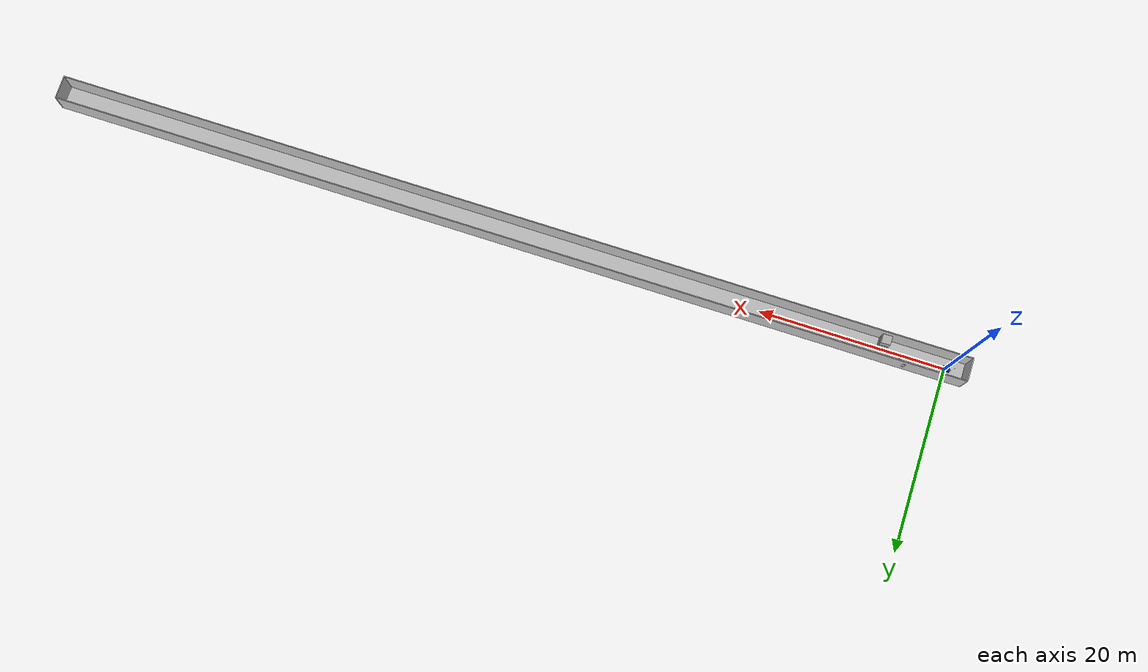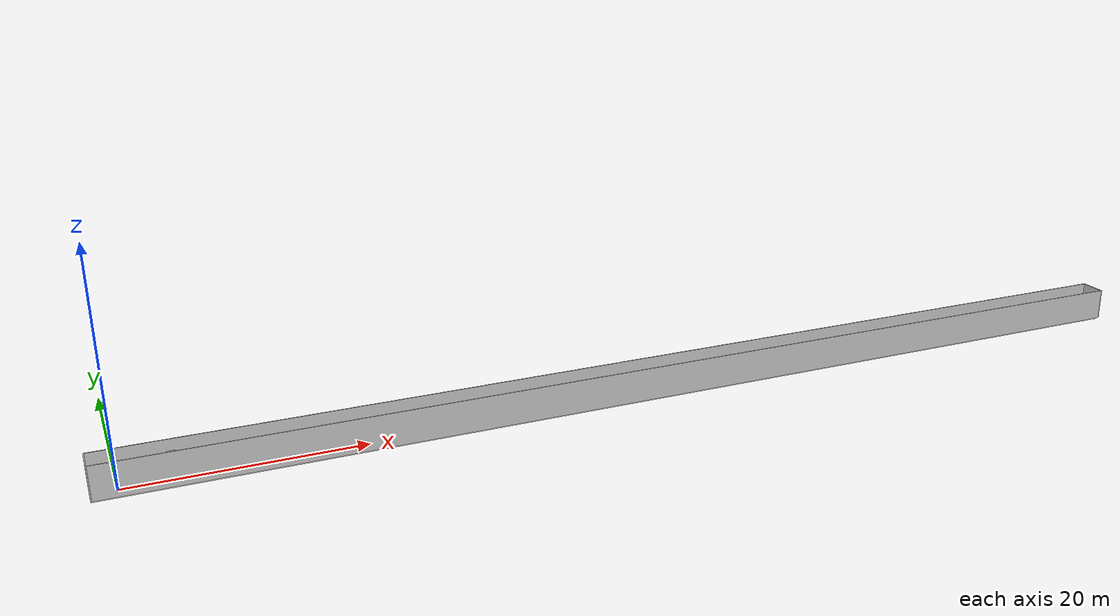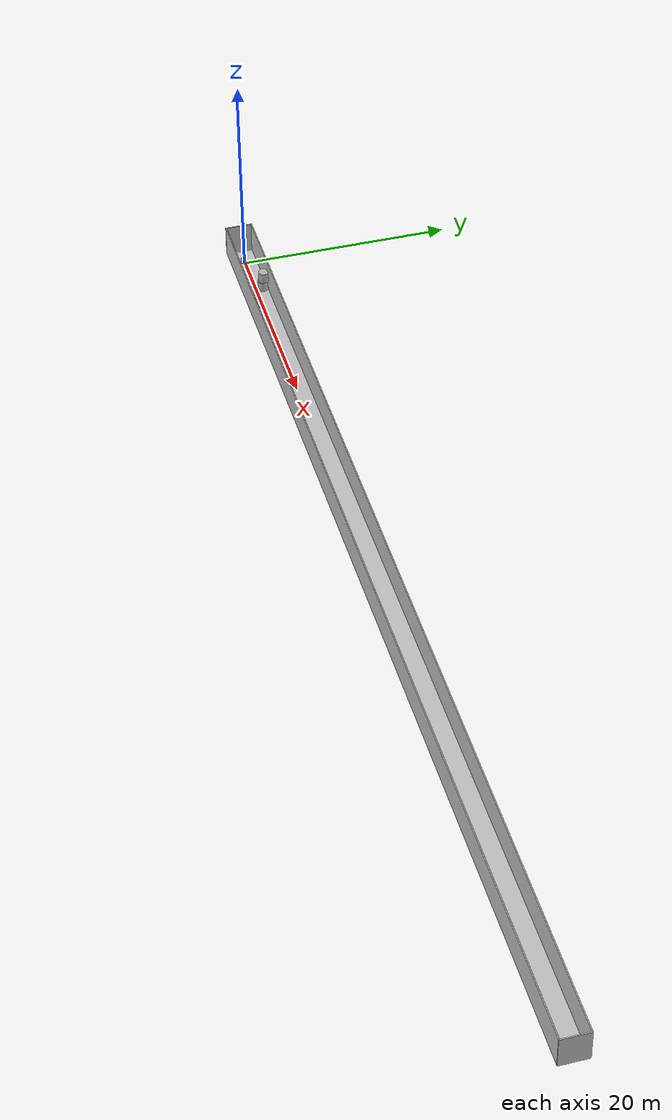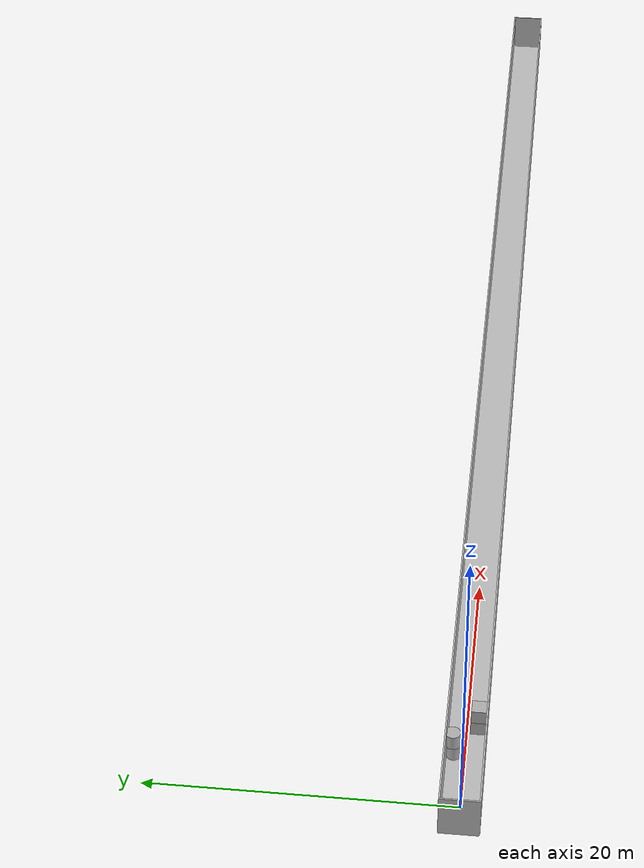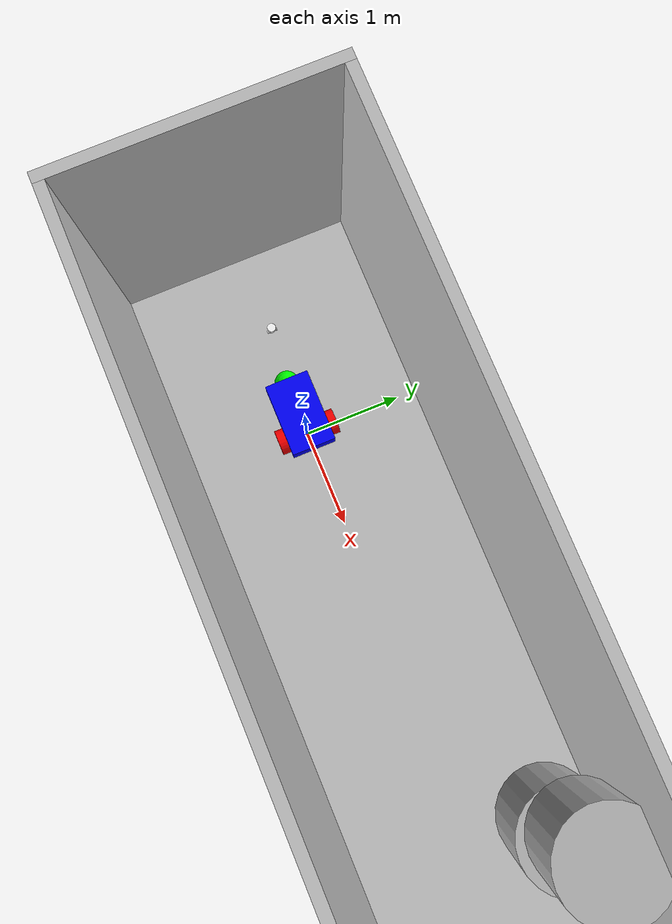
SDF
<?xml version="1.0" ?>
<sdf version="1.8">
    <world name="world_corridor">
        <physics name="1ms" type="ignored">
            <max_step_size>0.001</max_step_size>
            <real_time_factor>1.0</real_time_factor>
        </physics>

        <plugin
            filename="ignition-gazebo-physics-system"
            name="ignition::gazebo::systems::Physics">
        </plugin>
        <plugin
            filename="ignition-gazebo-user-commands-system"
            name="ignition::gazebo::systems::UserCommands">
        </plugin>
        <plugin
            filename="ignition-gazebo-scene-broadcaster-system"
            name="ignition::gazebo::systems::SceneBroadcaster">
        </plugin>

        <light type="directional" name="sun">
            <cast_shadows>false</cast_shadows>
            <pose>0 0 10 0 0 0</pose>
            <diffuse>0.8 0.8 0.8 1</diffuse>
            <specular>0.2 0.2 0.2 1</specular>
            <attenuation>
                <range>1000</range>
                <constant>0.9</constant>
                <linear>0.01</linear>
                <quadratic>0.001</quadratic>
            </attenuation>
            <direction>-0.5 0.1 -0.9</direction>
        </light>

        <model name="corridor" canonical_link="plane">
            <static>true</static>
            <pose relative_to="world">48 0 0 0 0 0</pose>

            <link name="plane">
                <pose relative_to="__model__">0 0 0 0 0 0</pose>
                <collision name="collision">
                <geometry>
                    <plane>
                    <normal>0 0 1</normal>
                    </plane>
                </geometry>
                </collision>
                <visual name="visual">
                <geometry>
                    <plane>
                    <normal>0 0 1</normal>
                    <size>100.1 2.5 </size>
                    </plane>
                </geometry>
                <material>
                    <ambient>0.75 0.75 0.75 1</ambient>
                    <diffuse>0.75 0.75 0.75 1</diffuse>
                    <specular>0.75 0.75 0.75 1</specular>
                </material>
                </visual>
            </link>

            <link name="right_wall">
                <pose relative_to="plane">0 -1.25 1.5 0 0 0</pose>
                <collision name="collision">
                    <geometry>
                        <box>
                            <size>100 0.1 3</size>
                        </box>
                    </geometry>
                </collision>
                <visual name="visual">
                    <geometry>
                        <box>
                            <size>100 0.1 3</size>
                        </box>
                    </geometry>
                    <material>
                        <ambient>0.75 0.75 0.75 1</ambient>
                        <diffuse>0.75 0.75 0.75 1</diffuse>
                        <specular>0.75 0.75 0.75 1</specular>
                    </material>
                </visual>
            </link>

            <link name="left_wall">
                <pose relative_to="plane">0 1.25 1.5 0 0 0</pose>
                <collision name="collision">
                    <geometry>
                        <box>
                            <size>100 0.1 3</size>
                        </box>
                    </geometry>
                </collision>
                <visual name="visual">
                    <geometry>
                        <box>
                            <size>100 0.1 3</size>
                        </box>
                    </geometry>
                    <material>
                        <ambient>0.75 0.75 0.75 1</ambient>
                        <diffuse>0.75 0.75 0.75 1</diffuse>
                        <specular>0.75 0.75 0.75 1</specular>
                    </material>
                </visual>
            </link>

            <link name="end1_wall">
                <pose relative_to="plane">50.05 0 1.5 0 0 0</pose>
                <collision name="collision">
                    <geometry>
                        <box>
                            <size>0.1 2.6 3</size>
                        </box>
                    </geometry>
                </collision>
                <visual name="visual">
                    <geometry>
                        <box>
                            <size>0.1 2.6 3</size>
                        </box>
                    </geometry>
                    <material>
                        <ambient>0.75 0.75 0.75 1</ambient>
                        <diffuse>0.75 0.75 0.75 1</diffuse>
                        <specular>0.75 0.75 0.75 1</specular>
                    </material>
                </visual>
            </link>

            <link name="end2_wall">
                <pose relative_to="plane">-50.05 0 1.5 0 0 0</pose>
                <collision name="collision">
                    <geometry>
                        <box>
                            <size>0.1 2.6 3</size>
                        </box>
                    </geometry>
                </collision>
                <visual name="visual">
                    <geometry>
                        <box>
                            <size>0.1 2.6 3</size>
                        </box>
                    </geometry>
                    <material>
                        <ambient>0.75 0.75 0.75 1</ambient>
                        <diffuse>0.75 0.75 0.75 1</diffuse>
                        <specular>0.75 0.75 0.75 1</specular>
                    </material>
                </visual>
            </link>
        </model>

        <model name="wheelchair">
            <pose>0 0 0 0 0 0</pose>
            <include merge="true">
                <uri>package://ros_gz_wheelchair_description/models/wheelchair</uri>
            </include>
        </model>

    <model name='box'>
      <pose>6.77679 -0.697378 0.5 0 -0 0</pose>
      <link name='box_link'>
        <inertial>
          <inertia>
            <ixx>0.16666</ixx>
            <ixy>0</ixy>
            <ixz>0</ixz>
            <iyy>0.16666</iyy>
            <iyz>0</iyz>
            <izz>0.16666</izz>
          </inertia>
          <mass>1</mass>
          <pose>0 0 0 0 -0 0</pose>
        </inertial>
        <collision name='box_collision'>
          <geometry>
            <box>
              <size>1 1 1</size>
            </box>
          </geometry>
          <surface>
            <friction>
              <ode/>
            </friction>
            <bounce/>
            <contact/>
          </surface>
        </collision>
        <visual name='box_visual'>
          <geometry>
            <box>
              <size>1 1 1</size>
            </box>
          </geometry>
          <material>
            <ambient>0.3 0.3 0.3 1</ambient>
            <diffuse>0.7 0.7 0.7 1</diffuse>
            <specular>1 1 1 1</specular>
          </material>
        </visual>
        <pose>0 0 0 0 -0 0</pose>
        <enable_wind>false</enable_wind>
      </link>
      <static>false</static>
      <self_collide>false</self_collide>
    </model>
    <model name='box_0'>
      <pose>6.77851 -0.715272 1.5 0 -0 0</pose>
      <link name='box_link'>
        <inertial>
          <inertia>
            <ixx>0.16666</ixx>
            <ixy>0</ixy>
            <ixz>0</ixz>
            <iyy>0.16666</iyy>
            <iyz>0</iyz>
            <izz>0.16666</izz>
          </inertia>
          <mass>1</mass>
          <pose>0 0 0 0 -0 0</pose>
        </inertial>
        <collision name='box_collision'>
          <geometry>
            <box>
              <size>1 1 1</size>
            </box>
          </geometry>
          <surface>
            <friction>
              <ode/>
            </friction>
            <bounce/>
            <contact/>
          </surface>
        </collision>
        <visual name='box_visual'>
          <geometry>
            <box>
              <size>1 1 1</size>
            </box>
          </geometry>
          <material>
            <ambient>0.3 0.3 0.3 1</ambient>
            <diffuse>0.7 0.7 0.7 1</diffuse>
            <specular>1 1 1 1</specular>
          </material>
        </visual>
        <pose>0 0 0 0 -0 0</pose>
        <enable_wind>false</enable_wind>
      </link>
      <static>false</static>
      <self_collide>false</self_collide>
    </model>
    <model name='cylinder'>
      <pose>4.40667 0.730064 0.5 0 0 -1e-06</pose>
      <link name='cylinder_link'>
        <inertial>
          <inertia>
            <ixx>0.14580000000000001</ixx>
            <ixy>0</ixy>
            <ixz>0</ixz>
            <iyy>0.14580000000000001</iyy>
            <iyz>0</iyz>
            <izz>0.125</izz>
          </inertia>
          <mass>1</mass>
          <pose>0 0 0 0 -0 0</pose>
        </inertial>
        <collision name='cylinder_collision'>
          <geometry>
            <cylinder>
              <radius>0.5</radius>
              <length>1</length>
            </cylinder>
          </geometry>
          <surface>
            <friction>
              <ode/>
            </friction>
            <bounce/>
            <contact/>
          </surface>
        </collision>
        <visual name='cylinder_visual'>
          <geometry>
            <cylinder>
              <radius>0.5</radius>
              <length>1</length>
            </cylinder>
          </geometry>
          <material>
            <ambient>0.3 0.3 0.3 1</ambient>
            <diffuse>0.7 0.7 0.7 1</diffuse>
            <specular>1 1 1 1</specular>
          </material>
        </visual>
        <pose>0 0 0 0 -0 0</pose>
        <enable_wind>false</enable_wind>
      </link>
      <static>false</static>
      <self_collide>false</self_collide>
    </model>
    <model name='cylinder_0'>
      <pose>4.38075 0.829821 1.5 0 0 -1e-06</pose>
      <link name='cylinder_link'>
        <inertial>
          <inertia>
            <ixx>0.14580000000000001</ixx>
            <ixy>0</ixy>
            <ixz>0</ixz>
            <iyy>0.14580000000000001</iyy>
            <iyz>0</iyz>
            <izz>0.125</izz>
          </inertia>
          <mass>1</mass>
          <pose>0 0 0 0 -0 0</pose>
        </inertial>
        <collision name='cylinder_collision'>
          <geometry>
            <cylinder>
              <radius>0.5</radius>
              <length>1</length>
            </cylinder>
          </geometry>
          <surface>
            <friction>
              <ode/>
            </friction>
            <bounce/>
            <contact/>
          </surface>
        </collision>
        <visual name='cylinder_visual'>
          <geometry>
            <cylinder>
              <radius>0.5</radius>
              <length>1</length>
            </cylinder>
          </geometry>
          <material>
            <ambient>0.3 0.3 0.3 1</ambient>
            <diffuse>0.7 0.7 0.7 1</diffuse>
            <specular>1 1 1 1</specular>
          </material>
        </visual>
        <pose>0 0 0 0 -0 0</pose>
        <enable_wind>false</enable_wind>
      </link>
      <static>false</static>
      <self_collide>false</self_collide>
    </model>

    </world>
</sdf>

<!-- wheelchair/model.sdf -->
<sdf version="1.8">
    <model name='wheelchair'>
        <!--base frame of the wheelchair-->
        <link name="center">
            <pose relative_to="__model__">0 0 0.12925 0 0 0</pose>
        </link>

        <!--Chassis Link-->
        <link name='chassis'>
            <pose relative_to='center'>-0.175 0 0.1 0 0 0</pose>
            <inertial>
                <mass>20</mass>
                <inertia>
                    <ixx>0.4113</ixx>
                    <ixy>0</ixy>
                    <ixz>0</ixz>
                    <iyy>1.0042</iyy>
                    <iyz>0</iyz>
                    <izz>1.2821</izz>
                </inertia>
            </inertial>
            <visual name='visual'>
                <geometry>
                    <box>
                        <size>0.75 0.4547 0.2</size>
                    </box>
                </geometry>
                <material>
                    <ambient>0.0 0.0 1.0 1</ambient>
                    <diffuse>0.0 0.0 1.0 1</diffuse>
                    <specular>0.0 0.0 1.0 1</specular>
                </material>
            </visual>
            <collision name='collision'>
                <geometry>
                    <box>
                        <size>0.75 0.4547 0.2</size>
                    </box>
                </geometry>
            </collision>
            <sensor name="imu_sensor" type="imu">
                <always_on>1</always_on>
                <update_rate>10</update_rate>
                <visualize>false</visualize>
                <topic>imu</topic>
                <pose relative_to='center'>0 0 0 0 0 0</pose>
            </sensor>
        </link>

        <!--Left Wheel Link-->
        <link name='left_wheel'>
            <pose relative_to='center'>0 0.26985 0 -1.5707 0 0</pose>
            <inertial>
                <mass>1</mass>
                <inertia>
                    <ixx>4.77847e-3</ixx>
                    <ixy>0</ixy>
                    <ixz>0</ixz>
                    <iyy>4.77847e-3</iyy>
                    <iyz>0</iyz>
                    <izz>8.35278e-3</izz>
                </inertia>
            </inertial>
            <visual name='visual'>
                <geometry>
                    <cylinder>
                        <radius>0.12925</radius>
                        <length>0.085</length>
                    </cylinder>
                </geometry>
                <material>
                    <ambient>1.0 0.0 0.0 1</ambient>
                    <diffuse>1.0 0.0 0.0 1</diffuse>
                    <specular>1.0 0.0 0.0 1</specular>
                </material>
            </visual>
            <collision name='collision'>
                <geometry>
                    <cylinder>
                        <radius>0.12925</radius>
                        <length>0.085</length>
                    </cylinder>
                </geometry>
            </collision>
        </link>

        <!--Right Wheel Link-->
        <link name='right_wheel'>
            <pose relative_to='center'>0 -0.26985 0 -1.5707 0 0</pose>
            <inertial>
                <mass>1</mass>
                <inertia>
                    <ixx>4.77847e-3</ixx>
                    <ixy>0</ixy>
                    <ixz>0</ixz>
                    <iyy>4.77847e-3</iyy>
                    <iyz>0</iyz>
                    <izz>8.35278e-3</izz>
                </inertia>
            </inertial>
            <visual name='visual'>
                <geometry>
                    <cylinder>
                        <radius>0.12925</radius>
                        <length>0.085</length>
                    </cylinder>
                </geometry>
                <material>
                    <ambient>1.0 0.0 0.0 1</ambient>
                    <diffuse>1.0 0.0 0.0 1</diffuse>
                    <specular>1.0 0.0 0.0 1</specular>
                </material>
            </visual>
            <collision name='collision'>
                <geometry>
                    <cylinder>
                        <radius>0.12925</radius>
                        <length>0.085</length>
                    </cylinder>
                </geometry>
            </collision>
        </link>

        <!--Laser Link-->
        <link name="laser">
            <pose relative_to="center">-0.74 0 1.40575 0 0 0</pose>
            <visual name="visual">
                <geometry>
                    <cylinder>
                        <radius>0.0381</radius>
                        <length>0.0381</length>
                    </cylinder>
                </geometry>
                <material>
                    <ambient>1 1 1 1</ambient>
                    <diffuse>1 1 1 1</diffuse>
                    <specular>1 1 1 1</specular>
                </material>
            </visual>
            <collision name='collision'>
                <geometry>
                    <cylinder>
                        <radius>0.0381</radius>
                        <length>0.0381</length>
                    </cylinder>
                </geometry>
            </collision>
            <sensor name='lidar' type='gpu_lidar'>
                <pose>0 0 0 0 0 0</pose>
                <topic>lidar</topic>
                <ignition_frame_id>laser</ignition_frame_id>
                <update_rate>10</update_rate>
                <ray>
                    <scan>
                        <horizontal>
                            <samples>640</samples>
                            <resolution>1</resolution>
                            <min_angle>-3.141592654</min_angle>
                            <max_angle>3.141592654</max_angle>
                        </horizontal>
                        <vertical>
                            <samples>1</samples>
                            <resolution>0.01</resolution>
                            <min_angle>0</min_angle>
                            <max_angle>0</max_angle>
                        </vertical>
                    </scan>
                    <range>
                        <min>0.08</min>
                        <max>60.0</max>
                        <resolution>0.01</resolution>
                    </range>
                </ray>
                <always_on>1</always_on>
                <visualize>true</visualize>
            </sensor>
        </link>

        <!--Camera Link-->
        <link name="camera">
            <pose relative_to="laser">0 0 -0.075 0 0 0</pose>
            <visual name="visual">
                <geometry>
                    <box>
                        <size>0.0225 0.088 0.0225</size>
                    </box>
                </geometry>
                <material>
                    <ambient>1 1 1 1</ambient>
                    <diffuse>1 1 1 1</diffuse>
                    <specular>1 1 1 1</specular>
                </material>
            </visual>
            <collision name='collision'>
                <geometry>
                    <box>
                        <size>0.0225 0.088 0.0225</size>
                    </box>
                </geometry>
            </collision>
        </link>

        <!--Caster Wheel Link-->
        <link name='caster'>
            <pose relative_to='center'>-0.55 0 0 0 0 0</pose>
            <inertial>
                <mass>1</mass>
                <inertia>
                    <ixx>0.016</ixx>
                    <ixy>0</ixy>
                    <ixz>0</ixz>
                    <iyy>0.016</iyy>
                    <iyz>0</iyz>
                    <izz>0.016</izz>
                </inertia>
            </inertial>
            <visual name='visual'>
                <geometry>
                    <sphere>
                        <radius>0.12925</radius>
                    </sphere>
                </geometry>
                <material>
                    <ambient>0.0 1.0 0.0 1</ambient>
                    <diffuse>0.0 1.0 0.0 1</diffuse>
                    <specular>0.0 1.0 0.0 1</specular>
                </material>
            </visual>
            <collision name='collision'>
                <geometry>
                    <sphere>
                        <radius>0.12925</radius>
                    </sphere>
                </geometry>
            </collision>
        </link>

        <joint name="center_chassis_joint" type="fixed">
            <pose relative_to="center">0 0 0 0 0 0</pose>
            <parent>center</parent>
            <child>chassis</child>
        </joint>

        <!-- Joint between chassis and the left wheel -->
        <joint name='left_wheel_joint' type='revolute'>
            <pose relative_to='left_wheel'>0 0 0 0 0 0</pose>
            <parent>center</parent>
            <child>left_wheel</child>
            <axis>
                <xyz expressed_in='left_wheel'>0 0 1</xyz>
                <limit>
                    <lower>-1.79769e+308</lower>    <!--negative infinity-->
                    <upper>1.79769e+308</upper>     <!--positive infinity-->
                </limit>
            </axis>
        </joint>

        <!-- Joint between chassis and the right wheel -->
        <joint name='right_wheel_joint' type='revolute'>
            <pose relative_to='right_wheel'>0 0 0 0 0 0</pose>
            <parent>center</parent>
            <child>right_wheel</child>
            <axis>
                <xyz expressed_in='right_wheel'>0 0 1</xyz>
                <limit>
                    <lower>-1.79769e+308</lower>    <!--negative infinity-->
                    <upper>1.79769e+308</upper>     <!--positive infinity-->
                </limit>
            </axis>
        </joint>

        <!--Joint between Chassis and Laser-->
        <joint name="laser_joint" type="fixed">
            <pose relative_to="laser"></pose>
            <parent>chassis</parent>
            <child>laser</child>
        </joint>

        <!--Joint between LiDar and Camera-->
        <joint name="camera_joint" type="fixed">
            <pose relative_to="camera"></pose>
            <parent>laser</parent>
            <child>camera</child>
        </joint>

        <!--Joint where the caster wheel attached to the chassis-->
        <joint name='caster_wheel' type='ball'>
            <parent>center</parent>
            <child>caster</child>
        </joint>

        <!--Plugin for driving the robot-->
        <plugin
            filename='ignition-gazebo-diff-drive-system'
            name='ignition::gazebo::systems::DiffDrive'>
            <left_joint>left_wheel_joint</left_joint>
            <right_joint>right_wheel_joint</right_joint>
            <wheel_separation>0.5397</wheel_separation>
            <wheel_radius>0.12925</wheel_radius>
            <frame_id>odom</frame_id>
            <child_frame_id>center</child_frame_id>
            <odom_publish_frequency>10</odom_publish_frequency>
            <max_linear_acceleration>1</max_linear_acceleration>
            <min_linear_acceleration>-1</min_linear_acceleration>
            <max_angular_acceleration>2</max_angular_acceleration>
            <min_angular_acceleration>-2</min_angular_acceleration>
            <max_linear_velocity>0.5</max_linear_velocity>
            <min_linear_velocity>-0.5</min_linear_velocity>
            <max_angular_velocity>1</max_angular_velocity>
            <min_angular_velocity>-1</min_angular_velocity>
            <topic>cmd_vel</topic>
        </plugin>

        <!--Plugin for lidar-->
        <plugin
            filename="ignition-gazebo-sensors-system"
            name="ignition::gazebo::systems::Sensors">
            <render_engine>ogre2</render_engine>
        </plugin>

        <!--Plugin for imu sensor-->
        <plugin
            filename="ignition-gazebo-imu-system"
            name="ignition::gazebo::systems::Imu">
        </plugin>

        <plugin
            filename="ignition-gazebo-joint-state-publisher-system"
            name="ignition::gazebo::systems::JointStatePublisher">
        </plugin>

    </model>
</sdf>
